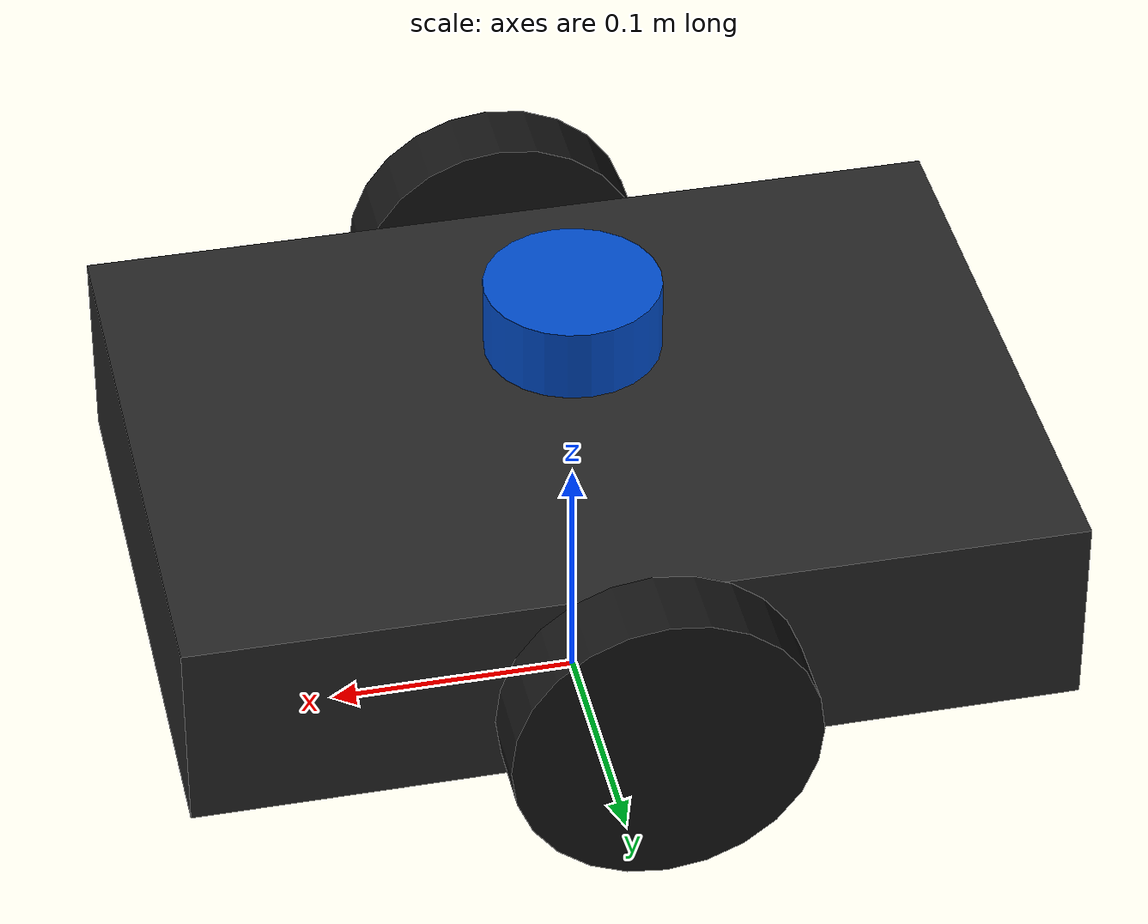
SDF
<?xml version="1.0"?>
<sdf version="1.9">

<model name="my_rover">

  <!-- Chassis center is 0.10 m above the ground -->
  <pose>0 0 0.10 0 0 0</pose>

  <!-- ================= CHASSIS ================= -->

  <link name="base_link">

    <inertial>
      <mass>5.0</mass>
      <inertia>
        <ixx>0.05</ixx>
        <iyy>0.05</iyy>
        <izz>0.05</izz>
      </inertia>
    </inertial>

    <collision name="collision">
      <geometry>
        <box>
          <size>0.35 0.25 0.08</size>
        </box>
      </geometry>
    </collision>

    <visual name="visual">
      <geometry>
        <box>
          <size>0.35 0.25 0.08</size>
        </box>
      </geometry>

      <material>
        <ambient>0.15 0.15 0.15 1</ambient>
        <diffuse>0.15 0.15 0.15 1</diffuse>
      </material>
    </visual>

  </link>

  <!-- ================= LEFT WHEEL ================= -->

  <link name="left_wheel">

    <pose>0 0.155 0 0 0 0</pose>

    <inertial>
      <mass>0.25</mass>
      <inertia>
        <ixx>0.0005</ixx>
        <iyy>0.0005</iyy>
        <izz>0.0005</izz>
      </inertia>
    </inertial>

    <collision name="collision">

      <pose>0 0 0 1.5708 0 0</pose>

      <geometry>
        <cylinder>
          <radius>0.06</radius>
          <length>0.03</length>
        </cylinder>
      </geometry>

    </collision>

    <visual name="visual">

      <pose>0 0 0 1.5708 0 0</pose>

      <geometry>
        <cylinder>
          <radius>0.06</radius>
          <length>0.03</length>
        </cylinder>
      </geometry>

      <material>
        <ambient>0.08 0.08 0.08 1</ambient>
        <diffuse>0.08 0.08 0.08 1</diffuse>
      </material>

    </visual>

  </link>

  <!-- ================= RIGHT WHEEL ================= -->

  <link name="right_wheel">

    <pose>0 -0.155 0 0 0 0</pose>

    <inertial>
      <mass>0.25</mass>
      <inertia>
        <ixx>0.0005</ixx>
        <iyy>0.0005</iyy>
        <izz>0.0005</izz>
      </inertia>
    </inertial>

    <collision name="collision">

      <pose>0 0 0 1.5708 0 0</pose>

      <geometry>
        <cylinder>
          <radius>0.06</radius>
          <length>0.03</length>
        </cylinder>
      </geometry>

    </collision>

    <visual name="visual">

      <pose>0 0 0 1.5708 0 0</pose>

      <geometry>
        <cylinder>
          <radius>0.06</radius>
          <length>0.03</length>
        </cylinder>
      </geometry>

      <material>
        <ambient>0.08 0.08 0.08 1</ambient>
        <diffuse>0.08 0.08 0.08 1</diffuse>
      </material>

    </visual>

  </link>

  <!-- ================= JOINTS ================= -->

  <joint name="left_wheel_joint" type="revolute">

    <parent>base_link</parent>
    <child>left_wheel</child>

    <pose>0 0.155 0 0 0 0</pose>

    <axis>
      <xyz>0 1 0</xyz>

      <limit>
        <lower>-1e16</lower>
        <upper>1e16</upper>
      </limit>

      <dynamics>
        <damping>0.01</damping>
      </dynamics>

    </axis>

  </joint>

  <joint name="right_wheel_joint" type="revolute">

    <parent>base_link</parent>
    <child>right_wheel</child>

    <pose>0 -0.155 0 0 0 0</pose>

    <axis>
      <xyz>0 1 0</xyz>

      <limit>
        <lower>-1e16</lower>
        <upper>1e16</upper>
      </limit>

      <dynamics>
        <damping>0.01</damping>
      </dynamics>

    </axis>

  </joint>

  <!-- ================= LIDAR ================= -->

  <link name="lidar_link">

    <!-- Mounted above the chassis -->
    <pose>0 0 0.08 0 0 0</pose>

    <visual name="visual">

      <geometry>
        <cylinder>
          <radius>0.035</radius>
          <length>0.03</length>
        </cylinder>
      </geometry>

      <material>
        <ambient>0.0 0.3 0.8 1</ambient>
        <diffuse>0.0 0.3 0.8 1</diffuse>
      </material>

    </visual>

    <collision name="collision">

      <geometry>
        <cylinder>
          <radius>0.035</radius>
          <length>0.03</length>
        </cylinder>
      </geometry>

    </collision>

    <inertial>

      <mass>0.1</mass>

      <inertia>
        <ixx>0.0001</ixx>
        <iyy>0.0001</iyy>
        <izz>0.0001</izz>
      </inertia>

    </inertial>
        <sensor name="lidar" type="gpu_lidar">

      <pose>0 0 0 0 0 0</pose>

      <update_rate>10</update_rate>

      <topic>scan</topic>

      <ray>

        <scan>

          <horizontal>

            <samples>360</samples>

            <resolution>1</resolution>

            <min_angle>-3.14159</min_angle>

            <max_angle>3.14159</max_angle>

          </horizontal>

        </scan>

        <range>

          <min>0.10</min>

          <max>10.0</max>

          <resolution>0.01</resolution>

        </range>

      </ray>

      <always_on>true</always_on>
      <visualize>true</visualize>

    </sensor>

  </link>

  <joint name="lidar_joint" type="fixed">

    <parent>base_link</parent>
    <child>lidar_link</child>

  </joint>
  <!-- ================= DIFF DRIVE ================= -->

  <plugin
      filename="gz-sim-diff-drive-system"
      name="gz::sim::systems::DiffDrive">

    <left_joint>left_wheel_joint</left_joint>
    <right_joint>right_wheel_joint</right_joint>

    <wheel_separation>0.31</wheel_separation>
    <wheel_radius>0.06</wheel_radius>

    <topic>cmd_vel</topic>

    <odom_topic>odom</odom_topic>
    <tf_topic>tf</tf_topic>

    <frame_id>odom</frame_id>
    <child_frame_id>base_link</child_frame_id>

  </plugin>

    <!-- ================= POSE PUBLISHER ================= -->
</model>

</sdf>
